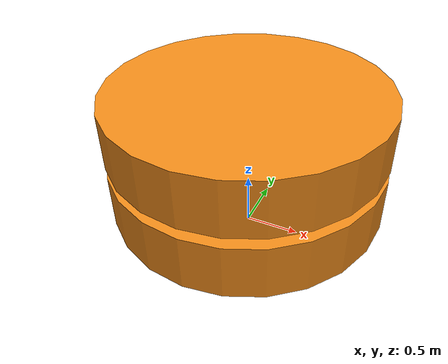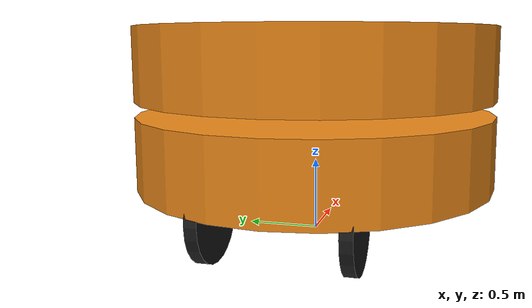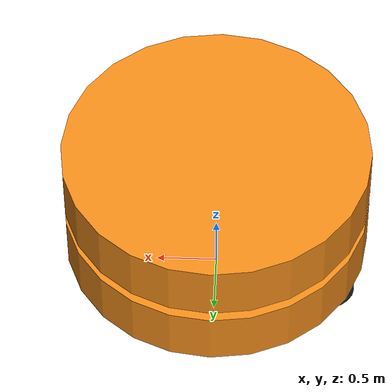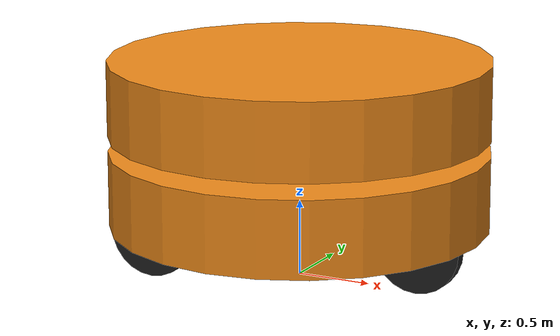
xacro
<?xml version="1.0"?>
<robot xmlns:xacro="http://ros.org/wiki/xacro">

  <xacro:arg name="wheel_diameter" default="0.6"/>
  <xacro:arg name="base_diameter" default="2.5"/>

  <xacro:property name="wheel_radius" value="${$(arg wheel_diameter)/2}"/>
  <xacro:property name="base_radius" value="${$(arg base_diameter)/2}"/>
  <xacro:property name="wheel_wheelbase" value="1.7"/>
  <xacro:property name="wheel_track" value="0.9"/>
  <xacro:property name="wheel_thickness" value="0.08"/>
  <xacro:property name="wheel_mass" value="0.05"/>
  <xacro:property name="base_mass" value="1"/>
  <xacro:property name="base_thickness" value="0.5"/>

  <xacro:include filename="inertial_macros.xacro"/>

  <link name="base_link" />
  <!-- Chassis -->
  <link name="chassis">
    <collision>
      <origin xyz="0 0 0" rpy="0 0 0" />
      <geometry>
        <cylinder length="${base_thickness}" radius="${base_radius}" />
      </geometry>
    </collision>
    <visual>
      <origin xyz="0 0 0" rpy="0 0 0" />
      <geometry>
        <cylinder length="${base_thickness}" radius="${base_radius}" />
      </geometry>
      <material name="Orange" />
    </visual>
    <xacro:inertial_cylinder mass="${base_mass}" length="${base_thickness}" radius="${base_radius}">
      <origin xyz="0 0 0" rpy="0 0 0"/>
    </xacro:inertial_cylinder>
  </link>
  <gazebo reference="chassis">
    <material>Gazebo/Orange</material>
  </gazebo>
  <!-- rotatory base  -->
  <link name="rotatory_base">
    <collision>
      <origin xyz="0 0 0" rpy="0 0 0" />
      <geometry>
        <cylinder length="${base_thickness}" radius="${base_radius}" />
      </geometry>
    </collision>
    <visual>
      <origin xyz="0 0 0" rpy="0 0 0" />
      <geometry>
        <cylinder length="${base_thickness}" radius="${base_radius}" />
      </geometry>
      <material name="Orange" />
    </visual>
    <xacro:inertial_cylinder mass="${base_mass}" length="${base_thickness}" radius="${base_radius}">
      <origin xyz="0 0 0" rpy="0 0 0"/>
    </xacro:inertial_cylinder>
  </link>
  <gazebo reference="rotatory_base">
    <material>Gazebo/Orange</material>
  </gazebo>
  <!-- left Steering Link -->
  <link name="left_steering_link">
    <visual>
      <geometry>
        <box size="0.01 0.01 0.01" />
      </geometry>
      <material name="Black" />
    </visual>
    <inertial>
      <origin xyz="0 0 0" rpy="0 0 0" />
      <mass value="0.005" />
      <inertia ixx="0.1" ixy="0.0" ixz="0.0" iyy="0.1" iyz="0.0" izz="0.1" />
    </inertial>
  </link>
  <!-- left wheel Link -->
  <link name="left_wheel_link">
    <collision>
      <geometry>
        <cylinder length="${wheel_thickness}" radius="${wheel_radius}" />
      </geometry>
    </collision>
    <visual>
      <geometry>
        <cylinder length="${wheel_thickness}" radius="${wheel_radius}"/>
      </geometry>
      <material name="Black" />
    </visual>
    <xacro:inertial_cylinder mass="${wheel_mass}" length="${wheel_thickness}" radius="${wheel_radius}">
      <origin xyz="0 0 0" rpy="0 0 0"/>
    </xacro:inertial_cylinder>
  </link>
  <gazebo reference="left_wheel_link">
    <material>Gazebo/Black</material>
  </gazebo>
  <!-- right Steering Link -->
    <link name="right_steering_link">
    <visual>
      <geometry>
        <box size="0.01 0.01 0.01" />
      </geometry>
      <material name="Black" />
    </visual>
    <inertial>
      <origin xyz="0 0 0" rpy="0 0 0" />
      <mass value="0.005" />
      <inertia ixx="0.1" ixy="0.0" ixz="0.0" iyy="0.1" iyz="0.0" izz="0.1" />
    </inertial>
  </link>
  <!-- right wheel Link -->
  <link name="right_wheel_link">
    <collision>
      <geometry>
        <cylinder length="${wheel_thickness}" radius="${wheel_radius}"/>
      </geometry>
    </collision>
    <visual>
      <geometry>
        <cylinder length="${wheel_thickness}" radius="${wheel_radius}"/>
      </geometry>
      <material name="Black" />
    </visual>
    <xacro:inertial_cylinder mass="${wheel_mass}" length="${wheel_thickness}" radius="${wheel_radius}">
      <origin xyz="0 0 0" rpy="0 0 0"/>
    </xacro:inertial_cylinder>
  </link>
  <gazebo reference="right_wheel_link">
    <material>Gazebo/Black</material>
  </gazebo>
  <!-- Steering Link -->
  <link name="steering_link">
    <visual>
      <geometry>
        <box size="0.01 0.01 0.01" />
      </geometry>
      <material name="Black" />
    </visual>
    <inertial>
      <origin xyz="0 0 0" rpy="0 0 0" />
      <mass value="0.005" />
      <inertia ixx="0.1" ixy="0.0" ixz="0.0" iyy="0.1" iyz="0.0" izz="0.1" />
    </inertial>
  </link>
  <!-- traction wheel link -->
  <link name="wheel_front_link">
    <collision>
      <geometry>
        <cylinder length="${wheel_thickness}" radius="${wheel_radius}"/>
      </geometry>
    </collision>
    <visual>
      <geometry>
        <cylinder length="${wheel_thickness}" radius="${wheel_radius}"/>
      </geometry>
      <material name="Black" />
    </visual>
    <xacro:inertial_cylinder mass="${wheel_mass}" length="${wheel_thickness}" radius="${wheel_radius}">
      <origin xyz="0 0 0" rpy="0 0 0"/>
    </xacro:inertial_cylinder>
  </link>
  <gazebo reference="wheel_front_link">
    <material>Gazebo/Black</material>
  </gazebo>

  <!-- Joints -->
  <joint name="chassis_joint" type="fixed">
    <origin xyz="0 0 ${wheel_radius*2}" rpy="0 0 0" />
    <parent link="base_link" />
    <child link="chassis" />
  </joint>
  <joint name="rotatory_base_joint" type="continuous">
    <origin xyz="0 0 ${wheel_radius*2}" rpy="0 0 0" />
    <parent link="chassis" />
    <child link="rotatory_base" />
    <axis xyz="0 0 1"/>
  </joint>
  <joint name="steering_joint" type="continuous">
    <origin xyz="${wheel_wheelbase/2} 0 ${-wheel_radius}" rpy="0 0 0" />
    <parent link="chassis" />
    <child link="steering_link" />
    <axis xyz="0 0 1" />
  </joint>
  <joint name="traction_joint" type="continuous">
    <parent link="steering_link" />
    <child link="wheel_front_link" />
    <origin xyz="0 0 0" rpy="-1.57 0 0" />
    <axis xyz="0 0 1" />
  </joint>
  <joint name="left_steering_joint" type="continuous">
    <origin xyz="${-wheel_wheelbase/2} ${wheel_track/2} ${-wheel_radius}" rpy="0 0 0" />
    <parent link="chassis" />
    <child link="left_steering_link" />
    <axis xyz="0 0 1" />
  </joint>
  <joint name="right_steering_joint" type="continuous">
    <origin xyz="${-wheel_wheelbase/2} ${-wheel_track/2} ${-wheel_radius}" rpy="0 0 0" />
    <parent link="chassis" />
    <child link="right_steering_link" />
    <axis xyz="0 0 1" />
  </joint>
  <joint name="left_wheel_joint" type="continuous">
    <origin xyz="0 0 0" rpy="-1.57 0 0" />
    <parent link="left_steering_link" />
    <child link="left_wheel_link" />
    <axis xyz="0 0 1" />
  </joint>
  <joint name="right_wheel_joint" type="continuous">
    <origin xyz="0 0 0" rpy="-1.57 0 0" />
    <parent link="right_steering_link" />
    <child link="right_wheel_link" />
    <axis xyz="0 0 1" />
  </joint>
</robot>
